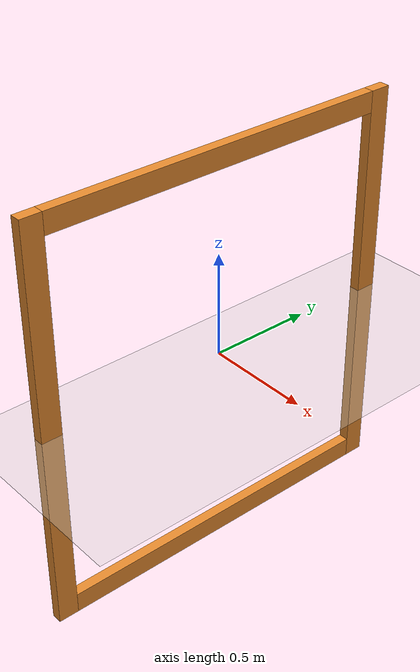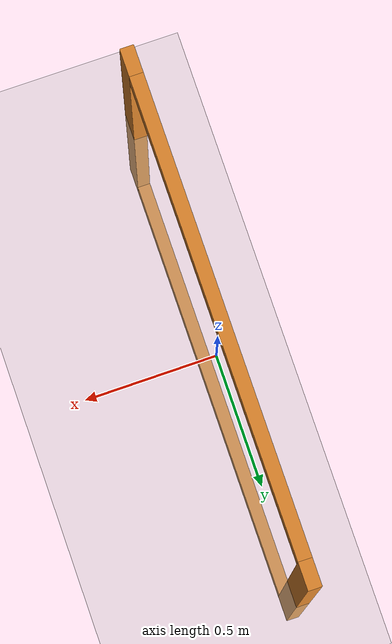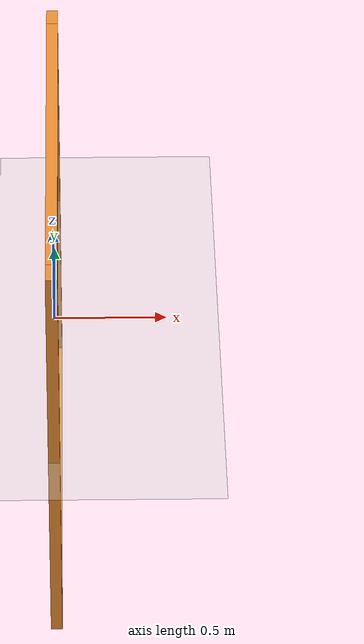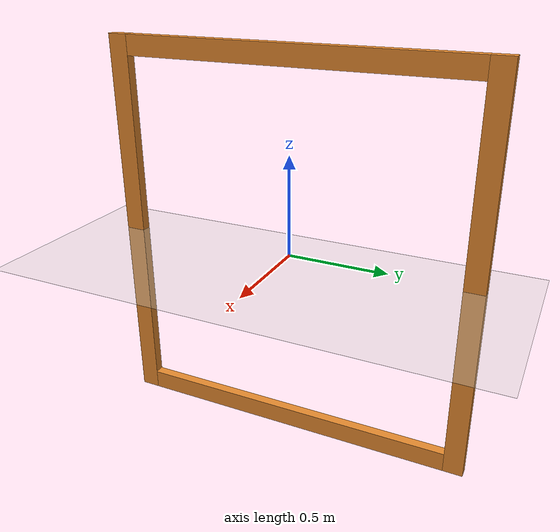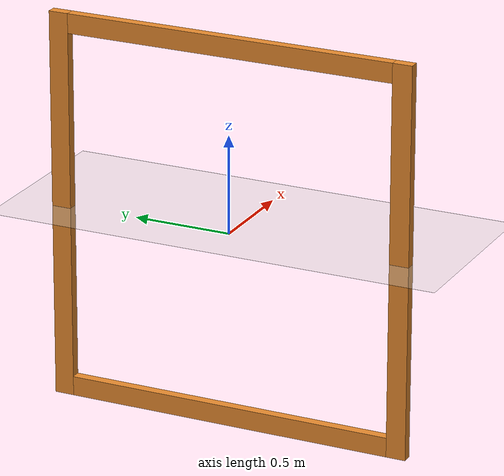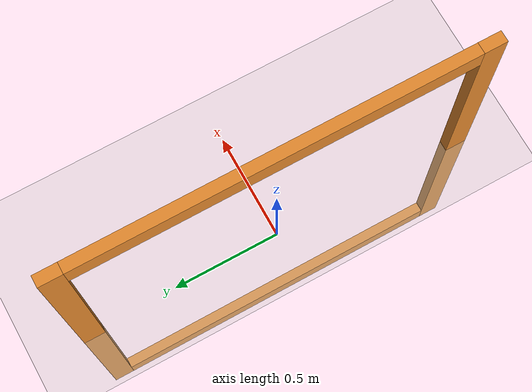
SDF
<sdf version="1.4">
 <world name="smart_drone_simple_world">
  <include><uri>model://ground_plane</uri></include>
  <include><uri>model://sun</uri></include>
  <model name="smart_drone_orange_gate6">
   <link name="left">
    <pose>0 -0.9 0 0 -0 0</pose>
    <inertial>
     <mass>1</mass>
     <inertia>
      <ixx>0.166667</ixx>
      <ixy>0</ixy>
      <ixz>0</ixz>
      <iyy>0.166667</iyy>
      <iyz>0</iyz>
      <izz>0.166667</izz>
     </inertia>
     <pose>0 -0.9 0 0 -0 0</pose>
    </inertial>
    <visual name="visual">
     <geometry><box><size>0.05 0.1 2</size></box></geometry>
     <material>
      <lighting>1</lighting>
      <script><uri>file://media/materials/scripts/gazebo.material</uri><name>Gazebo/Grey</name></script>
      <shader type="pixel"><normal_map>__default__</normal_map></shader>
      <ambient>0.9 0.54 0.18 1</ambient>
      <diffuse>0.9 0.54 0.18 1</diffuse>
      <specular>0.9 0.54 0.18 1</specular>
      <emissive>0 0 0 1</emissive>
     </material>
    </visual>
    <collision name="collision">
     <geometry><box><size>0.05 0.1 2</size></box></geometry>
     <surface>
      <friction>
       <ode><mu>1</mu><mu2>1</mu2><fdir1>0 0 0</fdir1><slip1>0</slip1><slip2>0</slip2></ode>
       <torsional>
        <coefficient>1</coefficient>
        <patch_radius>0</patch_radius>
        <surface_radius>0</surface_radius>
        <use_patch_radius>1</use_patch_radius>
        <ode><slip>0</slip></ode>
       </torsional>
      </friction>
      <bounce><restitution_coefficient>0</restitution_coefficient><threshold>1e+06</threshold></bounce>
      <contact>
       <collide_without_contact>0</collide_without_contact>
       <collide_without_contact_bitmask>1</collide_without_contact_bitmask>
       <collide_bitmask>1</collide_bitmask>
       <ode>
        <soft_cfm>0</soft_cfm>
        <soft_erp>0.2</soft_erp>
        <kp>1e+13</kp>
        <kd>1</kd>
        <max_vel>0.01</max_vel>
        <min_depth>0</min_depth>
       </ode>
       <bullet>
        <split_impulse>1</split_impulse>
        <split_impulse_penetration_threshold>-0.01</split_impulse_penetration_threshold>
        <soft_cfm>0</soft_cfm>
        <soft_erp>0.2</soft_erp>
        <kp>1e+13</kp>
        <kd>1</kd>
       </bullet>
      </contact>
     </surface>
    </collision>
   </link>
   <link name="top">
    <pose>0 0 0.95 0 -0 0</pose>
    <inertial>
     <mass>1</mass>
     <inertia>
      <ixx>0.166667</ixx>
      <ixy>0</ixy>
      <ixz>0</ixz>
      <iyy>0.166667</iyy>
      <iyz>0</iyz>
      <izz>0.166667</izz>
     </inertia>
     <pose>0 0 0.95 0 -0 0</pose>
    </inertial>
    <visual name="visual">
     <geometry><box><size>0.05 1.7 0.1</size></box></geometry>
     <material>
      <lighting>1</lighting>
      <script><uri>file://media/materials/scripts/gazebo.material</uri><name>Gazebo/Grey</name></script>
      <shader type="pixel"><normal_map>__default__</normal_map></shader>
      <ambient>0.9 0.54 0.18 1</ambient>
      <diffuse>0.9 0.54 0.18 1</diffuse>
      <specular>0.9 0.54 0.18 1</specular>
      <emissive>0 0 0 1</emissive>
     </material>
    </visual>
    <collision name="collision">
     <geometry><box><size>0.05 1.7 0.1</size></box></geometry>
     <surface>
      <friction>
       <ode><mu>1</mu><mu2>1</mu2><fdir1>0 0 0</fdir1><slip1>0</slip1><slip2>0</slip2></ode>
       <torsional>
        <coefficient>1</coefficient>
        <patch_radius>0</patch_radius>
        <surface_radius>0</surface_radius>
        <use_patch_radius>1</use_patch_radius>
        <ode><slip>0</slip></ode>
       </torsional>
      </friction>
      <bounce><restitution_coefficient>0</restitution_coefficient><threshold>1e+06</threshold></bounce>
      <contact>
       <collide_without_contact>0</collide_without_contact>
       <collide_without_contact_bitmask>1</collide_without_contact_bitmask>
       <collide_bitmask>1</collide_bitmask>
       <ode>
        <soft_cfm>0</soft_cfm>
        <soft_erp>0.2</soft_erp>
        <kp>1e+13</kp>
        <kd>1</kd>
        <max_vel>0.01</max_vel>
        <min_depth>0</min_depth>
       </ode>
       <bullet>
        <split_impulse>1</split_impulse>
        <split_impulse_penetration_threshold>-0.01</split_impulse_penetration_threshold>
        <soft_cfm>0</soft_cfm>
        <soft_erp>0.2</soft_erp>
        <kp>1e+13</kp>
        <kd>1</kd>
       </bullet>
      </contact>
     </surface>
    </collision>
   </link>
   <link name="bot">
    <pose>0 0 -0.95 0 -0 0</pose>
    <inertial>
     <mass>1</mass>
     <inertia>
      <ixx>0.166667</ixx>
      <ixy>0</ixy>
      <ixz>0</ixz>
      <iyy>0.166667</iyy>
      <iyz>0</iyz>
      <izz>0.166667</izz>
     </inertia>
     <pose>0 0 -0.95 0 -0 0</pose>
    </inertial>
    <visual name="visual">
     <geometry><box><size>0.05 1.7 0.1</size></box></geometry>
     <material>
      <lighting>1</lighting>
      <script><uri>file://media/materials/scripts/gazebo.material</uri><name>Gazebo/Grey</name></script>
      <shader type="pixel"><normal_map>__default__</normal_map></shader>
      <ambient>0.9 0.54 0.18 1</ambient>
      <diffuse>0.9 0.54 0.18 1</diffuse>
      <specular>0.9 0.54 0.18 1</specular>
      <emissive>0 0 0 1</emissive>
     </material>
    </visual>
    <collision name="collision">
     <geometry><box><size>0.05 1.7 0.1</size></box></geometry>
     <surface>
      <friction>
       <ode><mu>1</mu><mu2>1</mu2><fdir1>0 0 0</fdir1><slip1>0</slip1><slip2>0</slip2></ode>
       <torsional>
        <coefficient>1</coefficient>
        <patch_radius>0</patch_radius>
        <surface_radius>0</surface_radius>
        <use_patch_radius>1</use_patch_radius>
        <ode><slip>0</slip></ode>
       </torsional>
      </friction>
      <bounce><restitution_coefficient>0</restitution_coefficient><threshold>1e+06</threshold></bounce>
      <contact>
       <collide_without_contact>0</collide_without_contact>
       <collide_without_contact_bitmask>1</collide_without_contact_bitmask>
       <collide_bitmask>1</collide_bitmask>
       <ode>
        <soft_cfm>0</soft_cfm>
        <soft_erp>0.2</soft_erp>
        <kp>1e+13</kp>
        <kd>1</kd>
        <max_vel>0.01</max_vel>
        <min_depth>0</min_depth>
       </ode>
       <bullet>
        <split_impulse>1</split_impulse>
        <split_impulse_penetration_threshold>-0.01</split_impulse_penetration_threshold>
        <soft_cfm>0</soft_cfm>
        <soft_erp>0.2</soft_erp>
        <kp>1e+13</kp>
        <kd>1</kd>
       </bullet>
      </contact>
     </surface>
    </collision>
   </link>
   <link name="right">
    <pose>0 0.9 0 0 -0 0</pose>
    <inertial>
     <mass>1</mass>
     <inertia>
      <ixx>0.166667</ixx>
      <ixy>0</ixy>
      <ixz>0</ixz>
      <iyy>0.166667</iyy>
      <iyz>0</iyz>
      <izz>0.166667</izz>
     </inertia>
     <pose>0 0.9 0 0 -0 0</pose>
    </inertial>
    <visual name="visual">
     <geometry><box><size>0.05 0.1 2</size></box></geometry>
     <material>
      <lighting>1</lighting>
      <script><uri>file://media/materials/scripts/gazebo.material</uri><name>Gazebo/Grey</name></script>
      <shader type="pixel"><normal_map>__default__</normal_map></shader>
      <ambient>0.9 0.54 0.18 1</ambient>
      <diffuse>0.9 0.54 0.18 1</diffuse>
      <specular>0.9 0.54 0.18 1</specular>
      <emissive>0 0 0 1</emissive>
     </material>
    </visual>
    <collision name="collision">
     <geometry><box><size>0.05 0.1 2</size></box></geometry>
     <surface>
      <friction>
       <ode><mu>1</mu><mu2>1</mu2><fdir1>0 0 0</fdir1><slip1>0</slip1><slip2>0</slip2></ode>
       <torsional>
        <coefficient>1</coefficient>
        <patch_radius>0</patch_radius>
        <surface_radius>0</surface_radius>
        <use_patch_radius>1</use_patch_radius>
        <ode><slip>0</slip></ode>
       </torsional>
      </friction>
      <bounce><restitution_coefficient>0</restitution_coefficient><threshold>1e+06</threshold></bounce>
      <contact>
       <collide_without_contact>0</collide_without_contact>
       <collide_without_contact_bitmask>1</collide_without_contact_bitmask>
       <collide_bitmask>1</collide_bitmask>
       <ode>
        <soft_cfm>0</soft_cfm>
        <soft_erp>0.2</soft_erp>
        <kp>1e+13</kp>
        <kd>1</kd>
        <max_vel>0.01</max_vel>
        <min_depth>0</min_depth>
       </ode>
       <bullet>
        <split_impulse>1</split_impulse>
        <split_impulse_penetration_threshold>-0.01</split_impulse_penetration_threshold>
        <soft_cfm>0</soft_cfm>
        <soft_erp>0.2</soft_erp>
        <kp>1e+13</kp>
        <kd>1</kd>
       </bullet>
      </contact>
     </surface>
    </collision>
   </link>
   <static>1</static>
  </model>
 </world>
</sdf>
